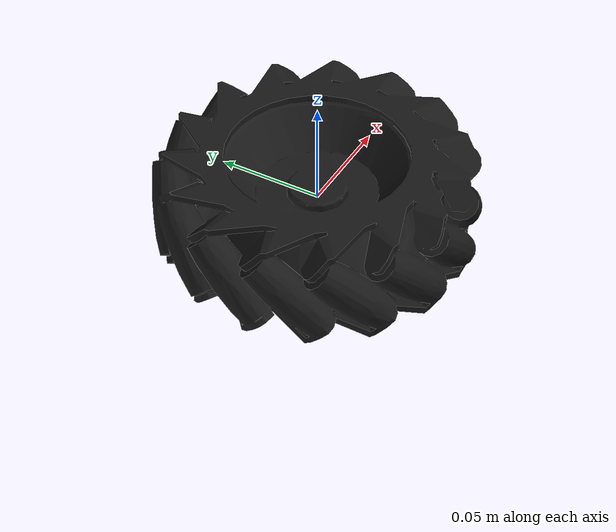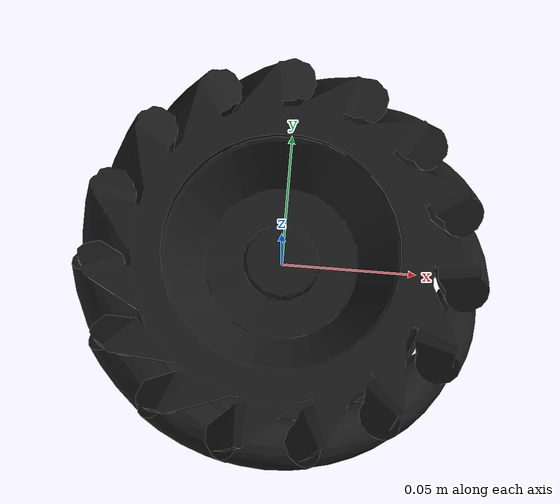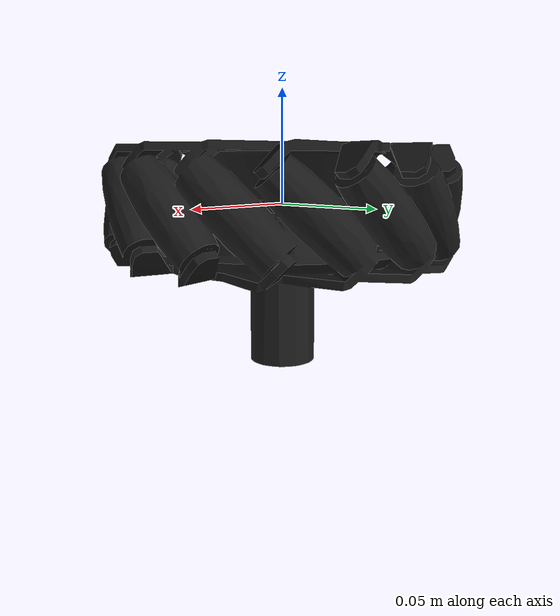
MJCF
<mujoco model="wheel_link_reflected">
  <default>
    <default class="visual">
      <geom group="2" type="mesh" contype="0" conaffinity="0"/>
    </default>
    <default class="collision">
      <geom group="3" type="mesh"/>
    </default>
  </default>
  <asset>
    <material name="mtl_m8_wheel_link_reflected" specular="0.20000000000000004" shininess="1.0" rgba="0.10196078 0.10196078 0.10196078 1.0"/>
    <mesh file="wheel_link_reflected.obj"/>
    <mesh file="wheel_link_reflected_collision_0.obj"/>
    <mesh file="wheel_link_reflected_collision_1.obj"/>
  </asset>
  <worldbody>
    <body name="wheel_link_reflected">
      <geom material="mtl_m8_wheel_link_reflected" mesh="wheel_link_reflected" class="visual"/>
      <geom mesh="wheel_link_reflected_collision_0" rgba="0.17944687872627718 0.020061524997949776 0.46186397623505404 1" class="collision"/>
      <geom mesh="wheel_link_reflected_collision_1" rgba="0.32911962421732166 0.1455939917755189 0.6989823562562943 1" class="collision"/>
    </body>
  </worldbody>
</mujoco>
